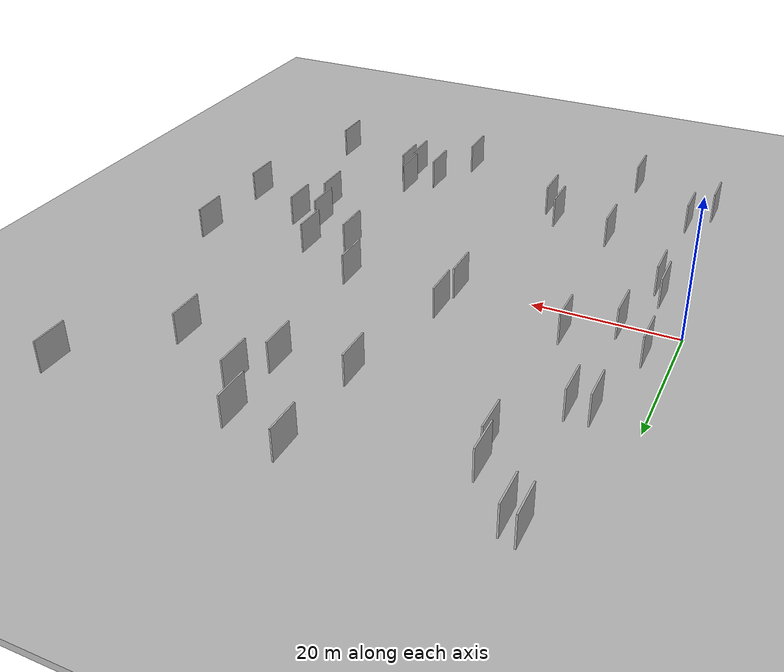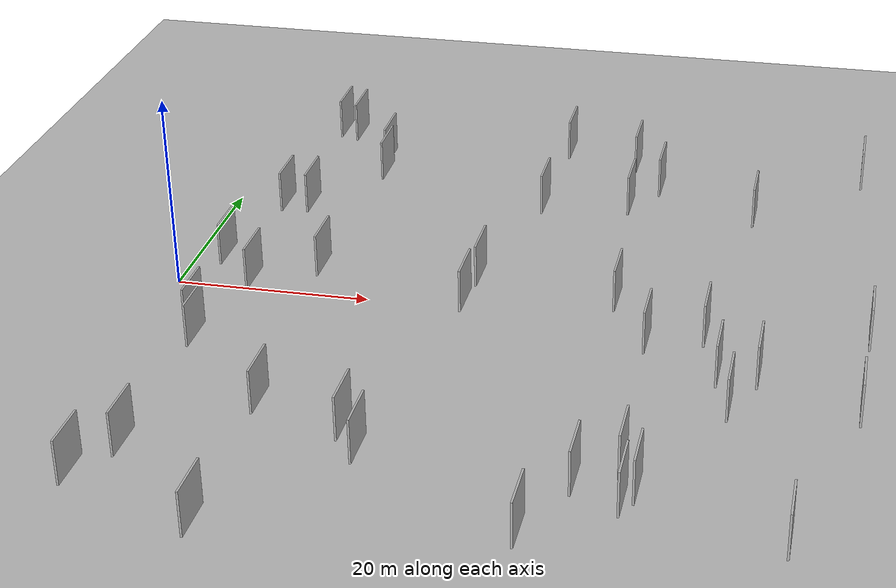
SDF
<?xml version="1.0" encoding="utf-8"?>

<sdf version="1.6">

   <world name="default">

      <gui fullscreen="0">

         <camera name="user_camera">

            <pose>-15 0 4.57585 0 0 0</pose>

            <view_controller>orbit</view_controller>

         </camera>

      </gui>

      <scene>

         <sky>

           <clouds>

             <speed>12</speed>

           </clouds>

         </sky>

         <ambient>0.4 0.4 0.4 1</ambient>

         <background>0.7 0.7 0.7 1</background>

         <shadows>1</shadows>

      </scene>

      <gravity>0 0 -9.8066</gravity>

      <magnetic_field>6e-06 2.3e-05 -4.2e-05</magnetic_field>

      <physics default="0" name="default_physics" type="ode">

         <ode>

            <solver>

               <type>quick</type>

               <iters>10</iters>

               <sor>1.0</sor>

               <use_dynamic_moi_rescaling>0</use_dynamic_moi_rescaling>

            </solver>

            <constraints>

               <cfm>0</cfm>

               <erp>0.2</erp>

               <contact_max_correcting_vel>100</contact_max_correcting_vel>

               <contact_surface_layer>0.001</contact_surface_layer>

            </constraints>

         </ode>

         <max_step_size>0.004</max_step_size>

         <real_time_factor>1</real_time_factor>

         <real_time_update_rate>250</real_time_update_rate>

      </physics>

      <light name="sun" type="directional">

         <cast_shadows>1</cast_shadows>

         <pose>0 0 10 0 0 0</pose>

         <diffuse>0.8 0.8 0.8 1</diffuse>

         <specular>0.2 0.2 0.2 1</specular>

         <attenuation>

            <range>1000</range>

            <constant>0.9</constant>

            <linear>0.01</linear>

            <quadratic>0.001</quadratic>

         </attenuation>

         <direction>-0.5 0.1 -0.9</direction>

      </light>

      <include>

         <name>ground_plane_1</name>

         <uri>model://HANNAS_ground_plane</uri>

         <pose>0 0 0  0 0 0</pose>

      </include>

      <include>

         <name>ground_plane_2</name>

         <uri>model://HANNAS_ground_plane</uri>

         <pose>100 0 0  0 0 0</pose>

      </include>

      <model name="HANNAS_wall_1">

         <static>1</static>

         <pose frame="">48.7667 -3.5897 0.0 0.000000 0.000000 1.570796</pose>

         <link name="link">

            <pose frame="">0 0 2.50 0 0 0</pose>

            <collision name="collision">

               <geometry>

                  <box>

                     <size>5.00 0.2 5.00</size>

                  </box>

               </geometry>

               <max_contacts>10</max_contacts>

               <surface>

                  <contact>

                     <ode/>

                  </contact>

                  <bounce/>

                  <friction>

                     <torsional>

                        <ode/>

                     </torsional>

                     <ode/>

                  </friction>

               </surface>

            </collision>

            <visual name="visual">

               <cast_shadows>0</cast_shadows>

               <geometry>

                  <box>

                     <size>5.00 0.2 5.00</size>

                  </box>

               </geometry>

               <material>

                  <script>

                     <uri>model://HANNAS_wall/materials/scripts</uri>

                     <uri>model://HANNAS_wall/materials/textures</uri>

                     <name>vrc/HANNAS_wall</name>

                  </script>

               </material>

            </visual>

            <self_collide>0</self_collide>

            <enable_wind>0</enable_wind>

            <kinematic>0</kinematic>

         </link>

      </model>

      <model name="HANNAS_wall_2">

         <static>1</static>

         <pose frame="">8.6576 39.2392 0.0 0.000000 0.000000 1.570796</pose>

         <link name="link">

            <pose frame="">0 0 2.50 0 0 0</pose>

            <collision name="collision">

               <geometry>

                  <box>

                     <size>5.00 0.2 5.00</size>

                  </box>

               </geometry>

               <max_contacts>10</max_contacts>

               <surface>

                  <contact>

                     <ode/>

                  </contact>

                  <bounce/>

                  <friction>

                     <torsional>

                        <ode/>

                     </torsional>

                     <ode/>

                  </friction>

               </surface>

            </collision>

            <visual name="visual">

               <cast_shadows>0</cast_shadows>

               <geometry>

                  <box>

                     <size>5.00 0.2 5.00</size>

                  </box>

               </geometry>

               <material>

                  <script>

                     <uri>model://HANNAS_wall/materials/scripts</uri>

                     <uri>model://HANNAS_wall/materials/textures</uri>

                     <name>vrc/HANNAS_wall</name>

                  </script>

               </material>

            </visual>

            <self_collide>0</self_collide>

            <enable_wind>0</enable_wind>

            <kinematic>0</kinematic>

         </link>

      </model>

      <model name="HANNAS_wall_3">

         <static>1</static>

         <pose frame="">5.6364 19.3057 0.0 0.000000 0.000000 1.570796</pose>

         <link name="link">

            <pose frame="">0 0 2.50 0 0 0</pose>

            <collision name="collision">

               <geometry>

                  <box>

                     <size>5.00 0.2 5.00</size>

                  </box>

               </geometry>

               <max_contacts>10</max_contacts>

               <surface>

                  <contact>

                     <ode/>

                  </contact>

                  <bounce/>

                  <friction>

                     <torsional>

                        <ode/>

                     </torsional>

                     <ode/>

                  </friction>

               </surface>

            </collision>

            <visual name="visual">

               <cast_shadows>0</cast_shadows>

               <geometry>

                  <box>

                     <size>5.00 0.2 5.00</size>

                  </box>

               </geometry>

               <material>

                  <script>

                     <uri>model://HANNAS_wall/materials/scripts</uri>

                     <uri>model://HANNAS_wall/materials/textures</uri>

                     <name>vrc/HANNAS_wall</name>

                  </script>

               </material>

            </visual>

            <self_collide>0</self_collide>

            <enable_wind>0</enable_wind>

            <kinematic>0</kinematic>

         </link>

      </model>

      <model name="HANNAS_wall_4">

         <static>1</static>

         <pose frame="">42.3247 36.5289 0.0 0.000000 0.000000 1.570796</pose>

         <link name="link">

            <pose frame="">0 0 2.50 0 0 0</pose>

            <collision name="collision">

               <geometry>

                  <box>

                     <size>5.00 0.2 5.00</size>

                  </box>

               </geometry>

               <max_contacts>10</max_contacts>

               <surface>

                  <contact>

                     <ode/>

                  </contact>

                  <bounce/>

                  <friction>

                     <torsional>

                        <ode/>

                     </torsional>

                     <ode/>

                  </friction>

               </surface>

            </collision>

            <visual name="visual">

               <cast_shadows>0</cast_shadows>

               <geometry>

                  <box>

                     <size>5.00 0.2 5.00</size>

                  </box>

               </geometry>

               <material>

                  <script>

                     <uri>model://HANNAS_wall/materials/scripts</uri>

                     <uri>model://HANNAS_wall/materials/textures</uri>

                     <name>vrc/HANNAS_wall</name>

                  </script>

               </material>

            </visual>

            <self_collide>0</self_collide>

            <enable_wind>0</enable_wind>

            <kinematic>0</kinematic>

         </link>

      </model>

      <model name="HANNAS_wall_5">

         <static>1</static>

         <pose frame="">29.7913 1.0914 0.0 0.000000 0.000000 1.570796</pose>

         <link name="link">

            <pose frame="">0 0 2.50 0 0 0</pose>

            <collision name="collision">

               <geometry>

                  <box>

                     <size>5.00 0.2 5.00</size>

                  </box>

               </geometry>

               <max_contacts>10</max_contacts>

               <surface>

                  <contact>

                     <ode/>

                  </contact>

                  <bounce/>

                  <friction>

                     <torsional>

                        <ode/>

                     </torsional>

                     <ode/>

                  </friction>

               </surface>

            </collision>

            <visual name="visual">

               <cast_shadows>0</cast_shadows>

               <geometry>

                  <box>

                     <size>5.00 0.2 5.00</size>

                  </box>

               </geometry>

               <material>

                  <script>

                     <uri>model://HANNAS_wall/materials/scripts</uri>

                     <uri>model://HANNAS_wall/materials/textures</uri>

                     <name>vrc/HANNAS_wall</name>

                  </script>

               </material>

            </visual>

            <self_collide>0</self_collide>

            <enable_wind>0</enable_wind>

            <kinematic>0</kinematic>

         </link>

      </model>

      <model name="HANNAS_wall_6">

         <static>1</static>

         <pose frame="">56.1538 -8.3670 0.0 0.000000 0.000000 1.570796</pose>

         <link name="link">

            <pose frame="">0 0 2.50 0 0 0</pose>

            <collision name="collision">

               <geometry>

                  <box>

                     <size>5.00 0.2 5.00</size>

                  </box>

               </geometry>

               <max_contacts>10</max_contacts>

               <surface>

                  <contact>

                     <ode/>

                  </contact>

                  <bounce/>

                  <friction>

                     <torsional>

                        <ode/>

                     </torsional>

                     <ode/>

                  </friction>

               </surface>

            </collision>

            <visual name="visual">

               <cast_shadows>0</cast_shadows>

               <geometry>

                  <box>

                     <size>5.00 0.2 5.00</size>

                  </box>

               </geometry>

               <material>

                  <script>

                     <uri>model://HANNAS_wall/materials/scripts</uri>

                     <uri>model://HANNAS_wall/materials/textures</uri>

                     <name>vrc/HANNAS_wall</name>

                  </script>

               </material>

            </visual>

            <self_collide>0</self_collide>

            <enable_wind>0</enable_wind>

            <kinematic>0</kinematic>

         </link>

      </model>

      <model name="HANNAS_wall_7">

         <static>1</static>

         <pose frame="">13.7642 5.5562 0.0 0.000000 0.000000 1.570796</pose>

         <link name="link">

            <pose frame="">0 0 2.50 0 0 0</pose>

            <collision name="collision">

               <geometry>

                  <box>

                     <size>5.00 0.2 5.00</size>

                  </box>

               </geometry>

               <max_contacts>10</max_contacts>

               <surface>

                  <contact>

                     <ode/>

                  </contact>

                  <bounce/>

                  <friction>

                     <torsional>

                        <ode/>

                     </torsional>

                     <ode/>

                  </friction>

               </surface>

            </collision>

            <visual name="visual">

               <cast_shadows>0</cast_shadows>

               <geometry>

                  <box>

                     <size>5.00 0.2 5.00</size>

                  </box>

               </geometry>

               <material>

                  <script>

                     <uri>model://HANNAS_wall/materials/scripts</uri>

                     <uri>model://HANNAS_wall/materials/textures</uri>

                     <name>vrc/HANNAS_wall</name>

                  </script>

               </material>

            </visual>

            <self_collide>0</self_collide>

            <enable_wind>0</enable_wind>

            <kinematic>0</kinematic>

         </link>

      </model>

      <model name="HANNAS_wall_8">

         <static>1</static>

         <pose frame="">43.0100 25.6684 0.0 0.000000 0.000000 1.570796</pose>

         <link name="link">

            <pose frame="">0 0 2.50 0 0 0</pose>

            <collision name="collision">

               <geometry>

                  <box>

                     <size>5.00 0.2 5.00</size>

                  </box>

               </geometry>

               <max_contacts>10</max_contacts>

               <surface>

                  <contact>

                     <ode/>

                  </contact>

                  <bounce/>

                  <friction>

                     <torsional>

                        <ode/>

                     </torsional>

                     <ode/>

                  </friction>

               </surface>

            </collision>

            <visual name="visual">

               <cast_shadows>0</cast_shadows>

               <geometry>

                  <box>

                     <size>5.00 0.2 5.00</size>

                  </box>

               </geometry>

               <material>

                  <script>

                     <uri>model://HANNAS_wall/materials/scripts</uri>

                     <uri>model://HANNAS_wall/materials/textures</uri>

                     <name>vrc/HANNAS_wall</name>

                  </script>

               </material>

            </visual>

            <self_collide>0</self_collide>

            <enable_wind>0</enable_wind>

            <kinematic>0</kinematic>

         </link>

      </model>

      <model name="HANNAS_wall_9">

         <static>1</static>

         <pose frame="">69.5566 -12.5910 0.0 0.000000 0.000000 1.570796</pose>

         <link name="link">

            <pose frame="">0 0 2.50 0 0 0</pose>

            <collision name="collision">

               <geometry>

                  <box>

                     <size>5.00 0.2 5.00</size>

                  </box>

               </geometry>

               <max_contacts>10</max_contacts>

               <surface>

                  <contact>

                     <ode/>

                  </contact>

                  <bounce/>

                  <friction>

                     <torsional>

                        <ode/>

                     </torsional>

                     <ode/>

                  </friction>

               </surface>

            </collision>

            <visual name="visual">

               <cast_shadows>0</cast_shadows>

               <geometry>

                  <box>

                     <size>5.00 0.2 5.00</size>

                  </box>

               </geometry>

               <material>

                  <script>

                     <uri>model://HANNAS_wall/materials/scripts</uri>

                     <uri>model://HANNAS_wall/materials/textures</uri>

                     <name>vrc/HANNAS_wall</name>

                  </script>

               </material>

            </visual>

            <self_collide>0</self_collide>

            <enable_wind>0</enable_wind>

            <kinematic>0</kinematic>

         </link>

      </model>

      <model name="HANNAS_wall_10">

         <static>1</static>

         <pose frame="">3.0416 -34.9562 0.0 0.000000 0.000000 1.570796</pose>

         <link name="link">

            <pose frame="">0 0 2.50 0 0 0</pose>

            <collision name="collision">

               <geometry>

                  <box>

                     <size>5.00 0.2 5.00</size>

                  </box>

               </geometry>

               <max_contacts>10</max_contacts>

               <surface>

                  <contact>

                     <ode/>

                  </contact>

                  <bounce/>

                  <friction>

                     <torsional>

                        <ode/>

                     </torsional>

                     <ode/>

                  </friction>

               </surface>

            </collision>

            <visual name="visual">

               <cast_shadows>0</cast_shadows>

               <geometry>

                  <box>

                     <size>5.00 0.2 5.00</size>

                  </box>

               </geometry>

               <material>

                  <script>

                     <uri>model://HANNAS_wall/materials/scripts</uri>

                     <uri>model://HANNAS_wall/materials/textures</uri>

                     <name>vrc/HANNAS_wall</name>

                  </script>

               </material>

            </visual>

            <self_collide>0</self_collide>

            <enable_wind>0</enable_wind>

            <kinematic>0</kinematic>

         </link>

      </model>

      <model name="HANNAS_wall_11">

         <static>1</static>

         <pose frame="">34.2192 38.9786 0.0 0.000000 0.000000 1.570796</pose>

         <link name="link">

            <pose frame="">0 0 2.50 0 0 0</pose>

            <collision name="collision">

               <geometry>

                  <box>

                     <size>5.00 0.2 5.00</size>

                  </box>

               </geometry>

               <max_contacts>10</max_contacts>

               <surface>

                  <contact>

                     <ode/>

                  </contact>

                  <bounce/>

                  <friction>

                     <torsional>

                        <ode/>

                     </torsional>

                     <ode/>

                  </friction>

               </surface>

            </collision>

            <visual name="visual">

               <cast_shadows>0</cast_shadows>

               <geometry>

                  <box>

                     <size>5.00 0.2 5.00</size>

                  </box>

               </geometry>

               <material>

                  <script>

                     <uri>model://HANNAS_wall/materials/scripts</uri>

                     <uri>model://HANNAS_wall/materials/textures</uri>

                     <name>vrc/HANNAS_wall</name>

                  </script>

               </material>

            </visual>

            <self_collide>0</self_collide>

            <enable_wind>0</enable_wind>

            <kinematic>0</kinematic>

         </link>

      </model>

      <model name="HANNAS_wall_12">

         <static>1</static>

         <pose frame="">5.6495 -10.6741 0.0 0.000000 0.000000 1.570796</pose>

         <link name="link">

            <pose frame="">0 0 2.50 0 0 0</pose>

            <collision name="collision">

               <geometry>

                  <box>

                     <size>5.00 0.2 5.00</size>

                  </box>

               </geometry>

               <max_contacts>10</max_contacts>

               <surface>

                  <contact>

                     <ode/>

                  </contact>

                  <bounce/>

                  <friction>

                     <torsional>

                        <ode/>

                     </torsional>

                     <ode/>

                  </friction>

               </surface>

            </collision>

            <visual name="visual">

               <cast_shadows>0</cast_shadows>

               <geometry>

                  <box>

                     <size>5.00 0.2 5.00</size>

                  </box>

               </geometry>

               <material>

                  <script>

                     <uri>model://HANNAS_wall/materials/scripts</uri>

                     <uri>model://HANNAS_wall/materials/textures</uri>

                     <name>vrc/HANNAS_wall</name>

                  </script>

               </material>

            </visual>

            <self_collide>0</self_collide>

            <enable_wind>0</enable_wind>

            <kinematic>0</kinematic>

         </link>

      </model>

      <model name="HANNAS_wall_13">

         <static>1</static>

         <pose frame="">14.3920 29.3328 0.0 0.000000 0.000000 1.570796</pose>

         <link name="link">

            <pose frame="">0 0 2.50 0 0 0</pose>

            <collision name="collision">

               <geometry>

                  <box>

                     <size>5.00 0.2 5.00</size>

                  </box>

               </geometry>

               <max_contacts>10</max_contacts>

               <surface>

                  <contact>

                     <ode/>

                  </contact>

                  <bounce/>

                  <friction>

                     <torsional>

                        <ode/>

                     </torsional>

                     <ode/>

                  </friction>

               </surface>

            </collision>

            <visual name="visual">

               <cast_shadows>0</cast_shadows>

               <geometry>

                  <box>

                     <size>5.00 0.2 5.00</size>

                  </box>

               </geometry>

               <material>

                  <script>

                     <uri>model://HANNAS_wall/materials/scripts</uri>

                     <uri>model://HANNAS_wall/materials/textures</uri>

                     <name>vrc/HANNAS_wall</name>

                  </script>

               </material>

            </visual>

            <self_collide>0</self_collide>

            <enable_wind>0</enable_wind>

            <kinematic>0</kinematic>

         </link>

      </model>

      <model name="HANNAS_wall_14">

         <static>1</static>

         <pose frame="">45.7584 30.9657 0.0 0.000000 0.000000 1.570796</pose>

         <link name="link">

            <pose frame="">0 0 2.50 0 0 0</pose>

            <collision name="collision">

               <geometry>

                  <box>

                     <size>5.00 0.2 5.00</size>

                  </box>

               </geometry>

               <max_contacts>10</max_contacts>

               <surface>

                  <contact>

                     <ode/>

                  </contact>

                  <bounce/>

                  <friction>

                     <torsional>

                        <ode/>

                     </torsional>

                     <ode/>

                  </friction>

               </surface>

            </collision>

            <visual name="visual">

               <cast_shadows>0</cast_shadows>

               <geometry>

                  <box>

                     <size>5.00 0.2 5.00</size>

                  </box>

               </geometry>

               <material>

                  <script>

                     <uri>model://HANNAS_wall/materials/scripts</uri>

                     <uri>model://HANNAS_wall/materials/textures</uri>

                     <name>vrc/HANNAS_wall</name>

                  </script>

               </material>

            </visual>

            <self_collide>0</self_collide>

            <enable_wind>0</enable_wind>

            <kinematic>0</kinematic>

         </link>

      </model>

      <model name="HANNAS_wall_15">

         <static>1</static>

         <pose frame="">54.2456 -1.1777 0.0 0.000000 0.000000 1.570796</pose>

         <link name="link">

            <pose frame="">0 0 2.50 0 0 0</pose>

            <collision name="collision">

               <geometry>

                  <box>

                     <size>5.00 0.2 5.00</size>

                  </box>

               </geometry>

               <max_contacts>10</max_contacts>

               <surface>

                  <contact>

                     <ode/>

                  </contact>

                  <bounce/>

                  <friction>

                     <torsional>

                        <ode/>

                     </torsional>

                     <ode/>

                  </friction>

               </surface>

            </collision>

            <visual name="visual">

               <cast_shadows>0</cast_shadows>

               <geometry>

                  <box>

                     <size>5.00 0.2 5.00</size>

                  </box>

               </geometry>

               <material>

                  <script>

                     <uri>model://HANNAS_wall/materials/scripts</uri>

                     <uri>model://HANNAS_wall/materials/textures</uri>

                     <name>vrc/HANNAS_wall</name>

                  </script>

               </material>

            </visual>

            <self_collide>0</self_collide>

            <enable_wind>0</enable_wind>

            <kinematic>0</kinematic>

         </link>

      </model>

      <model name="HANNAS_wall_16">

         <static>1</static>

         <pose frame="">7.5877 1.4294 0.0 0.000000 0.000000 1.570796</pose>

         <link name="link">

            <pose frame="">0 0 2.50 0 0 0</pose>

            <collision name="collision">

               <geometry>

                  <box>

                     <size>5.00 0.2 5.00</size>

                  </box>

               </geometry>

               <max_contacts>10</max_contacts>

               <surface>

                  <contact>

                     <ode/>

                  </contact>

                  <bounce/>

                  <friction>

                     <torsional>

                        <ode/>

                     </torsional>

                     <ode/>

                  </friction>

               </surface>

            </collision>

            <visual name="visual">

               <cast_shadows>0</cast_shadows>

               <geometry>

                  <box>

                     <size>5.00 0.2 5.00</size>

                  </box>

               </geometry>

               <material>

                  <script>

                     <uri>model://HANNAS_wall/materials/scripts</uri>

                     <uri>model://HANNAS_wall/materials/textures</uri>

                     <name>vrc/HANNAS_wall</name>

                  </script>

               </material>

            </visual>

            <self_collide>0</self_collide>

            <enable_wind>0</enable_wind>

            <kinematic>0</kinematic>

         </link>

      </model>

      <model name="HANNAS_wall_17">

         <static>1</static>

         <pose frame="">30.2131 6.5364 0.0 0.000000 0.000000 1.570796</pose>

         <link name="link">

            <pose frame="">0 0 2.50 0 0 0</pose>

            <collision name="collision">

               <geometry>

                  <box>

                     <size>5.00 0.2 5.00</size>

                  </box>

               </geometry>

               <max_contacts>10</max_contacts>

               <surface>

                  <contact>

                     <ode/>

                  </contact>

                  <bounce/>

                  <friction>

                     <torsional>

                        <ode/>

                     </torsional>

                     <ode/>

                  </friction>

               </surface>

            </collision>

            <visual name="visual">

               <cast_shadows>0</cast_shadows>

               <geometry>

                  <box>

                     <size>5.00 0.2 5.00</size>

                  </box>

               </geometry>

               <material>

                  <script>

                     <uri>model://HANNAS_wall/materials/scripts</uri>

                     <uri>model://HANNAS_wall/materials/textures</uri>

                     <name>vrc/HANNAS_wall</name>

                  </script>

               </material>

            </visual>

            <self_collide>0</self_collide>

            <enable_wind>0</enable_wind>

            <kinematic>0</kinematic>

         </link>

      </model>

      <model name="HANNAS_wall_18">

         <static>1</static>

         <pose frame="">67.7466 37.0043 0.0 0.000000 0.000000 1.570796</pose>

         <link name="link">

            <pose frame="">0 0 2.50 0 0 0</pose>

            <collision name="collision">

               <geometry>

                  <box>

                     <size>5.00 0.2 5.00</size>

                  </box>

               </geometry>

               <max_contacts>10</max_contacts>

               <surface>

                  <contact>

                     <ode/>

                  </contact>

                  <bounce/>

                  <friction>

                     <torsional>

                        <ode/>

                     </torsional>

                     <ode/>

                  </friction>

               </surface>

            </collision>

            <visual name="visual">

               <cast_shadows>0</cast_shadows>

               <geometry>

                  <box>

                     <size>5.00 0.2 5.00</size>

                  </box>

               </geometry>

               <material>

                  <script>

                     <uri>model://HANNAS_wall/materials/scripts</uri>

                     <uri>model://HANNAS_wall/materials/textures</uri>

                     <name>vrc/HANNAS_wall</name>

                  </script>

               </material>

            </visual>

            <self_collide>0</self_collide>

            <enable_wind>0</enable_wind>

            <kinematic>0</kinematic>

         </link>

      </model>

      <model name="HANNAS_wall_19">

         <static>1</static>

         <pose frame="">69.8926 1.0822 0.0 0.000000 0.000000 1.570796</pose>

         <link name="link">

            <pose frame="">0 0 2.50 0 0 0</pose>

            <collision name="collision">

               <geometry>

                  <box>

                     <size>5.00 0.2 5.00</size>

                  </box>

               </geometry>

               <max_contacts>10</max_contacts>

               <surface>

                  <contact>

                     <ode/>

                  </contact>

                  <bounce/>

                  <friction>

                     <torsional>

                        <ode/>

                     </torsional>

                     <ode/>

                  </friction>

               </surface>

            </collision>

            <visual name="visual">

               <cast_shadows>0</cast_shadows>

               <geometry>

                  <box>

                     <size>5.00 0.2 5.00</size>

                  </box>

               </geometry>

               <material>

                  <script>

                     <uri>model://HANNAS_wall/materials/scripts</uri>

                     <uri>model://HANNAS_wall/materials/textures</uri>

                     <name>vrc/HANNAS_wall</name>

                  </script>

               </material>

            </visual>

            <self_collide>0</self_collide>

            <enable_wind>0</enable_wind>

            <kinematic>0</kinematic>

         </link>

      </model>

      <model name="HANNAS_wall_20">

         <static>1</static>

         <pose frame="">51.3743 -28.3332 0.0 0.000000 0.000000 1.570796</pose>

         <link name="link">

            <pose frame="">0 0 2.50 0 0 0</pose>

            <collision name="collision">

               <geometry>

                  <box>

                     <size>5.00 0.2 5.00</size>

                  </box>

               </geometry>

               <max_contacts>10</max_contacts>

               <surface>

                  <contact>

                     <ode/>

                  </contact>

                  <bounce/>

                  <friction>

                     <torsional>

                        <ode/>

                     </torsional>

                     <ode/>

                  </friction>

               </surface>

            </collision>

            <visual name="visual">

               <cast_shadows>0</cast_shadows>

               <geometry>

                  <box>

                     <size>5.00 0.2 5.00</size>

                  </box>

               </geometry>

               <material>

                  <script>

                     <uri>model://HANNAS_wall/materials/scripts</uri>

                     <uri>model://HANNAS_wall/materials/textures</uri>

                     <name>vrc/HANNAS_wall</name>

                  </script>

               </material>

            </visual>

            <self_collide>0</self_collide>

            <enable_wind>0</enable_wind>

            <kinematic>0</kinematic>

         </link>

      </model>

      <model name="HANNAS_wall_21">

         <static>1</static>

         <pose frame="">15.5185 -20.9836 0.0 0.000000 0.000000 1.570796</pose>

         <link name="link">

            <pose frame="">0 0 2.50 0 0 0</pose>

            <collision name="collision">

               <geometry>

                  <box>

                     <size>5.00 0.2 5.00</size>

                  </box>

               </geometry>

               <max_contacts>10</max_contacts>

               <surface>

                  <contact>

                     <ode/>

                  </contact>

                  <bounce/>

                  <friction>

                     <torsional>

                        <ode/>

                     </torsional>

                     <ode/>

                  </friction>

               </surface>

            </collision>

            <visual name="visual">

               <cast_shadows>0</cast_shadows>

               <geometry>

                  <box>

                     <size>5.00 0.2 5.00</size>

                  </box>

               </geometry>

               <material>

                  <script>

                     <uri>model://HANNAS_wall/materials/scripts</uri>

                     <uri>model://HANNAS_wall/materials/textures</uri>

                     <name>vrc/HANNAS_wall</name>

                  </script>

               </material>

            </visual>

            <self_collide>0</self_collide>

            <enable_wind>0</enable_wind>

            <kinematic>0</kinematic>

         </link>

      </model>

      <model name="HANNAS_wall_22">

         <static>1</static>

         <pose frame="">64.6149 -33.4672 0.0 0.000000 0.000000 1.570796</pose>

         <link name="link">

            <pose frame="">0 0 2.50 0 0 0</pose>

            <collision name="collision">

               <geometry>

                  <box>

                     <size>5.00 0.2 5.00</size>

                  </box>

               </geometry>

               <max_contacts>10</max_contacts>

               <surface>

                  <contact>

                     <ode/>

                  </contact>

                  <bounce/>

                  <friction>

                     <torsional>

                        <ode/>

                     </torsional>

                     <ode/>

                  </friction>

               </surface>

            </collision>

            <visual name="visual">

               <cast_shadows>0</cast_shadows>

               <geometry>

                  <box>

                     <size>5.00 0.2 5.00</size>

                  </box>

               </geometry>

               <material>

                  <script>

                     <uri>model://HANNAS_wall/materials/scripts</uri>

                     <uri>model://HANNAS_wall/materials/textures</uri>

                     <name>vrc/HANNAS_wall</name>

                  </script>

               </material>

            </visual>

            <self_collide>0</self_collide>

            <enable_wind>0</enable_wind>

            <kinematic>0</kinematic>

         </link>

      </model>

      <model name="HANNAS_wall_23">

         <static>1</static>

         <pose frame="">49.6263 -24.9053 0.0 0.000000 0.000000 1.570796</pose>

         <link name="link">

            <pose frame="">0 0 2.50 0 0 0</pose>

            <collision name="collision">

               <geometry>

                  <box>

                     <size>5.00 0.2 5.00</size>

                  </box>

               </geometry>

               <max_contacts>10</max_contacts>

               <surface>

                  <contact>

                     <ode/>

                  </contact>

                  <bounce/>

                  <friction>

                     <torsional>

                        <ode/>

                     </torsional>

                     <ode/>

                  </friction>

               </surface>

            </collision>

            <visual name="visual">

               <cast_shadows>0</cast_shadows>

               <geometry>

                  <box>

                     <size>5.00 0.2 5.00</size>

                  </box>

               </geometry>

               <material>

                  <script>

                     <uri>model://HANNAS_wall/materials/scripts</uri>

                     <uri>model://HANNAS_wall/materials/textures</uri>

                     <name>vrc/HANNAS_wall</name>

                  </script>

               </material>

            </visual>

            <self_collide>0</self_collide>

            <enable_wind>0</enable_wind>

            <kinematic>0</kinematic>

         </link>

      </model>

      <model name="HANNAS_wall_24">

         <static>1</static>

         <pose frame="">57.7437 -14.0495 0.0 0.000000 0.000000 1.570796</pose>

         <link name="link">

            <pose frame="">0 0 2.50 0 0 0</pose>

            <collision name="collision">

               <geometry>

                  <box>

                     <size>5.00 0.2 5.00</size>

                  </box>

               </geometry>

               <max_contacts>10</max_contacts>

               <surface>

                  <contact>

                     <ode/>

                  </contact>

                  <bounce/>

                  <friction>

                     <torsional>

                        <ode/>

                     </torsional>

                     <ode/>

                  </friction>

               </surface>

            </collision>

            <visual name="visual">

               <cast_shadows>0</cast_shadows>

               <geometry>

                  <box>

                     <size>5.00 0.2 5.00</size>

                  </box>

               </geometry>

               <material>

                  <script>

                     <uri>model://HANNAS_wall/materials/scripts</uri>

                     <uri>model://HANNAS_wall/materials/textures</uri>

                     <name>vrc/HANNAS_wall</name>

                  </script>

               </material>

            </visual>

            <self_collide>0</self_collide>

            <enable_wind>0</enable_wind>

            <kinematic>0</kinematic>

         </link>

      </model>

      <model name="HANNAS_wall_25">

         <static>1</static>

         <pose frame="">56.6269 25.2751 0.0 0.000000 0.000000 1.570796</pose>

         <link name="link">

            <pose frame="">0 0 2.50 0 0 0</pose>

            <collision name="collision">

               <geometry>

                  <box>

                     <size>5.00 0.2 5.00</size>

                  </box>

               </geometry>

               <max_contacts>10</max_contacts>

               <surface>

                  <contact>

                     <ode/>

                  </contact>

                  <bounce/>

                  <friction>

                     <torsional>

                        <ode/>

                     </torsional>

                     <ode/>

                  </friction>

               </surface>

            </collision>

            <visual name="visual">

               <cast_shadows>0</cast_shadows>

               <geometry>

                  <box>

                     <size>5.00 0.2 5.00</size>

                  </box>

               </geometry>

               <material>

                  <script>

                     <uri>model://HANNAS_wall/materials/scripts</uri>

                     <uri>model://HANNAS_wall/materials/textures</uri>

                     <name>vrc/HANNAS_wall</name>

                  </script>

               </material>

            </visual>

            <self_collide>0</self_collide>

            <enable_wind>0</enable_wind>

            <kinematic>0</kinematic>

         </link>

      </model>

      <model name="HANNAS_wall_26">

         <static>1</static>

         <pose frame="">24.2420 -23.7374 0.0 0.000000 0.000000 1.570796</pose>

         <link name="link">

            <pose frame="">0 0 2.50 0 0 0</pose>

            <collision name="collision">

               <geometry>

                  <box>

                     <size>5.00 0.2 5.00</size>

                  </box>

               </geometry>

               <max_contacts>10</max_contacts>

               <surface>

                  <contact>

                     <ode/>

                  </contact>

                  <bounce/>

                  <friction>

                     <torsional>

                        <ode/>

                     </torsional>

                     <ode/>

                  </friction>

               </surface>

            </collision>

            <visual name="visual">

               <cast_shadows>0</cast_shadows>

               <geometry>

                  <box>

                     <size>5.00 0.2 5.00</size>

                  </box>

               </geometry>

               <material>

                  <script>

                     <uri>model://HANNAS_wall/materials/scripts</uri>

                     <uri>model://HANNAS_wall/materials/textures</uri>

                     <name>vrc/HANNAS_wall</name>

                  </script>

               </material>

            </visual>

            <self_collide>0</self_collide>

            <enable_wind>0</enable_wind>

            <kinematic>0</kinematic>

         </link>

      </model>

      <model name="HANNAS_wall_27">

         <static>1</static>

         <pose frame="">13.8191 32.9090 0.0 0.000000 0.000000 1.570796</pose>

         <link name="link">

            <pose frame="">0 0 2.50 0 0 0</pose>

            <collision name="collision">

               <geometry>

                  <box>

                     <size>5.00 0.2 5.00</size>

                  </box>

               </geometry>

               <max_contacts>10</max_contacts>

               <surface>

                  <contact>

                     <ode/>

                  </contact>

                  <bounce/>

                  <friction>

                     <torsional>

                        <ode/>

                     </torsional>

                     <ode/>

                  </friction>

               </surface>

            </collision>

            <visual name="visual">

               <cast_shadows>0</cast_shadows>

               <geometry>

                  <box>

                     <size>5.00 0.2 5.00</size>

                  </box>

               </geometry>

               <material>

                  <script>

                     <uri>model://HANNAS_wall/materials/scripts</uri>

                     <uri>model://HANNAS_wall/materials/textures</uri>

                     <name>vrc/HANNAS_wall</name>

                  </script>

               </material>

            </visual>

            <self_collide>0</self_collide>

            <enable_wind>0</enable_wind>

            <kinematic>0</kinematic>

         </link>

      </model>

      <model name="HANNAS_wall_28">

         <static>1</static>

         <pose frame="">50.3876 -30.3457 0.0 0.000000 0.000000 1.570796</pose>

         <link name="link">

            <pose frame="">0 0 2.50 0 0 0</pose>

            <collision name="collision">

               <geometry>

                  <box>

                     <size>5.00 0.2 5.00</size>

                  </box>

               </geometry>

               <max_contacts>10</max_contacts>

               <surface>

                  <contact>

                     <ode/>

                  </contact>

                  <bounce/>

                  <friction>

                     <torsional>

                        <ode/>

                     </torsional>

                     <ode/>

                  </friction>

               </surface>

            </collision>

            <visual name="visual">

               <cast_shadows>0</cast_shadows>

               <geometry>

                  <box>

                     <size>5.00 0.2 5.00</size>

                  </box>

               </geometry>

               <material>

                  <script>

                     <uri>model://HANNAS_wall/materials/scripts</uri>

                     <uri>model://HANNAS_wall/materials/textures</uri>

                     <name>vrc/HANNAS_wall</name>

                  </script>

               </material>

            </visual>

            <self_collide>0</self_collide>

            <enable_wind>0</enable_wind>

            <kinematic>0</kinematic>

         </link>

      </model>

      <model name="HANNAS_wall_29">

         <static>1</static>

         <pose frame="">45.9056 -28.0840 0.0 0.000000 0.000000 1.570796</pose>

         <link name="link">

            <pose frame="">0 0 2.50 0 0 0</pose>

            <collision name="collision">

               <geometry>

                  <box>

                     <size>5.00 0.2 5.00</size>

                  </box>

               </geometry>

               <max_contacts>10</max_contacts>

               <surface>

                  <contact>

                     <ode/>

                  </contact>

                  <bounce/>

                  <friction>

                     <torsional>

                        <ode/>

                     </torsional>

                     <ode/>

                  </friction>

               </surface>

            </collision>

            <visual name="visual">

               <cast_shadows>0</cast_shadows>

               <geometry>

                  <box>

                     <size>5.00 0.2 5.00</size>

                  </box>

               </geometry>

               <material>

                  <script>

                     <uri>model://HANNAS_wall/materials/scripts</uri>

                     <uri>model://HANNAS_wall/materials/textures</uri>

                     <name>vrc/HANNAS_wall</name>

                  </script>

               </material>

            </visual>

            <self_collide>0</self_collide>

            <enable_wind>0</enable_wind>

            <kinematic>0</kinematic>

         </link>

      </model>

      <model name="HANNAS_wall_30">

         <static>1</static>

         <pose frame="">8.4606 19.5830 0.0 0.000000 0.000000 1.570796</pose>

         <link name="link">

            <pose frame="">0 0 2.50 0 0 0</pose>

            <collision name="collision">

               <geometry>

                  <box>

                     <size>5.00 0.2 5.00</size>

                  </box>

               </geometry>

               <max_contacts>10</max_contacts>

               <surface>

                  <contact>

                     <ode/>

                  </contact>

                  <bounce/>

                  <friction>

                     <torsional>

                        <ode/>

                     </torsional>

                     <ode/>

                  </friction>

               </surface>

            </collision>

            <visual name="visual">

               <cast_shadows>0</cast_shadows>

               <geometry>

                  <box>

                     <size>5.00 0.2 5.00</size>

                  </box>

               </geometry>

               <material>

                  <script>

                     <uri>model://HANNAS_wall/materials/scripts</uri>

                     <uri>model://HANNAS_wall/materials/textures</uri>

                     <name>vrc/HANNAS_wall</name>

                  </script>

               </material>

            </visual>

            <self_collide>0</self_collide>

            <enable_wind>0</enable_wind>

            <kinematic>0</kinematic>

         </link>

      </model>

      <model name="HANNAS_wall_31">

         <static>1</static>

         <pose frame="">15.9250 -39.9434 0.0 0.000000 0.000000 1.570796</pose>

         <link name="link">

            <pose frame="">0 0 2.50 0 0 0</pose>

            <collision name="collision">

               <geometry>

                  <box>

                     <size>5.00 0.2 5.00</size>

                  </box>

               </geometry>

               <max_contacts>10</max_contacts>

               <surface>

                  <contact>

                     <ode/>

                  </contact>

                  <bounce/>

                  <friction>

                     <torsional>

                        <ode/>

                     </torsional>

                     <ode/>

                  </friction>

               </surface>

            </collision>

            <visual name="visual">

               <cast_shadows>0</cast_shadows>

               <geometry>

                  <box>

                     <size>5.00 0.2 5.00</size>

                  </box>

               </geometry>

               <material>

                  <script>

                     <uri>model://HANNAS_wall/materials/scripts</uri>

                     <uri>model://HANNAS_wall/materials/textures</uri>

                     <name>vrc/HANNAS_wall</name>

                  </script>

               </material>

            </visual>

            <self_collide>0</self_collide>

            <enable_wind>0</enable_wind>

            <kinematic>0</kinematic>

         </link>

      </model>

      <model name="HANNAS_wall_32">

         <static>1</static>

         <pose frame="">4.4493 -7.8242 0.0 0.000000 0.000000 1.570796</pose>

         <link name="link">

            <pose frame="">0 0 2.50 0 0 0</pose>

            <collision name="collision">

               <geometry>

                  <box>

                     <size>5.00 0.2 5.00</size>

                  </box>

               </geometry>

               <max_contacts>10</max_contacts>

               <surface>

                  <contact>

                     <ode/>

                  </contact>

                  <bounce/>

                  <friction>

                     <torsional>

                        <ode/>

                     </torsional>

                     <ode/>

                  </friction>

               </surface>

            </collision>

            <visual name="visual">

               <cast_shadows>0</cast_shadows>

               <geometry>

                  <box>

                     <size>5.00 0.2 5.00</size>

                  </box>

               </geometry>

               <material>

                  <script>

                     <uri>model://HANNAS_wall/materials/scripts</uri>

                     <uri>model://HANNAS_wall/materials/textures</uri>

                     <name>vrc/HANNAS_wall</name>

                  </script>

               </material>

            </visual>

            <self_collide>0</self_collide>

            <enable_wind>0</enable_wind>

            <kinematic>0</kinematic>

         </link>

      </model>

      <model name="HANNAS_wall_33">

         <static>1</static>

         <pose frame="">42.6043 -36.2293 0.0 0.000000 0.000000 1.570796</pose>

         <link name="link">

            <pose frame="">0 0 2.50 0 0 0</pose>

            <collision name="collision">

               <geometry>

                  <box>

                     <size>5.00 0.2 5.00</size>

                  </box>

               </geometry>

               <max_contacts>10</max_contacts>

               <surface>

                  <contact>

                     <ode/>

                  </contact>

                  <bounce/>

                  <friction>

                     <torsional>

                        <ode/>

                     </torsional>

                     <ode/>

                  </friction>

               </surface>

            </collision>

            <visual name="visual">

               <cast_shadows>0</cast_shadows>

               <geometry>

                  <box>

                     <size>5.00 0.2 5.00</size>

                  </box>

               </geometry>

               <material>

                  <script>

                     <uri>model://HANNAS_wall/materials/scripts</uri>

                     <uri>model://HANNAS_wall/materials/textures</uri>

                     <name>vrc/HANNAS_wall</name>

                  </script>

               </material>

            </visual>

            <self_collide>0</self_collide>

            <enable_wind>0</enable_wind>

            <kinematic>0</kinematic>

         </link>

      </model>

      <model name="HANNAS_wall_34">

         <static>1</static>

         <pose frame="">3.2122 6.1103 0.0 0.000000 0.000000 1.570796</pose>

         <link name="link">

            <pose frame="">0 0 2.50 0 0 0</pose>

            <collision name="collision">

               <geometry>

                  <box>

                     <size>5.00 0.2 5.00</size>

                  </box>

               </geometry>

               <max_contacts>10</max_contacts>

               <surface>

                  <contact>

                     <ode/>

                  </contact>

                  <bounce/>

                  <friction>

                     <torsional>

                        <ode/>

                     </torsional>

                     <ode/>

                  </friction>

               </surface>

            </collision>

            <visual name="visual">

               <cast_shadows>0</cast_shadows>

               <geometry>

                  <box>

                     <size>5.00 0.2 5.00</size>

                  </box>

               </geometry>

               <material>

                  <script>

                     <uri>model://HANNAS_wall/materials/scripts</uri>

                     <uri>model://HANNAS_wall/materials/textures</uri>

                     <name>vrc/HANNAS_wall</name>

                  </script>

               </material>

            </visual>

            <self_collide>0</self_collide>

            <enable_wind>0</enable_wind>

            <kinematic>0</kinematic>

         </link>

      </model>

      <model name="HANNAS_wall_35">

         <static>1</static>

         <pose frame="">26.4866 -27.0158 0.0 0.000000 0.000000 1.570796</pose>

         <link name="link">

            <pose frame="">0 0 2.50 0 0 0</pose>

            <collision name="collision">

               <geometry>

                  <box>

                     <size>5.00 0.2 5.00</size>

                  </box>

               </geometry>

               <max_contacts>10</max_contacts>

               <surface>

                  <contact>

                     <ode/>

                  </contact>

                  <bounce/>

                  <friction>

                     <torsional>

                        <ode/>

                     </torsional>

                     <ode/>

                  </friction>

               </surface>

            </collision>

            <visual name="visual">

               <cast_shadows>0</cast_shadows>

               <geometry>

                  <box>

                     <size>5.00 0.2 5.00</size>

                  </box>

               </geometry>

               <material>

                  <script>

                     <uri>model://HANNAS_wall/materials/scripts</uri>

                     <uri>model://HANNAS_wall/materials/textures</uri>

                     <name>vrc/HANNAS_wall</name>

                  </script>

               </material>

            </visual>

            <self_collide>0</self_collide>

            <enable_wind>0</enable_wind>

            <kinematic>0</kinematic>

         </link>

      </model>

      <model name="HANNAS_wall_36">

         <static>1</static>

         <pose frame="">44.7572 4.0832 0.0 0.000000 0.000000 1.570796</pose>

         <link name="link">

            <pose frame="">0 0 2.50 0 0 0</pose>

            <collision name="collision">

               <geometry>

                  <box>

                     <size>5.00 0.2 5.00</size>

                  </box>

               </geometry>

               <max_contacts>10</max_contacts>

               <surface>

                  <contact>

                     <ode/>

                  </contact>

                  <bounce/>

                  <friction>

                     <torsional>

                        <ode/>

                     </torsional>

                     <ode/>

                  </friction>

               </surface>

            </collision>

            <visual name="visual">

               <cast_shadows>0</cast_shadows>

               <geometry>

                  <box>

                     <size>5.00 0.2 5.00</size>

                  </box>

               </geometry>

               <material>

                  <script>

                     <uri>model://HANNAS_wall/materials/scripts</uri>

                     <uri>model://HANNAS_wall/materials/textures</uri>

                     <name>vrc/HANNAS_wall</name>

                  </script>

               </material>

            </visual>

            <self_collide>0</self_collide>

            <enable_wind>0</enable_wind>

            <kinematic>0</kinematic>

         </link>

      </model>

      <model name="HANNAS_wall_37">

         <static>1</static>

         <pose frame="">59.9113 -7.8884 0.0 0.000000 0.000000 1.570796</pose>

         <link name="link">

            <pose frame="">0 0 2.50 0 0 0</pose>

            <collision name="collision">

               <geometry>

                  <box>

                     <size>5.00 0.2 5.00</size>

                  </box>

               </geometry>

               <max_contacts>10</max_contacts>

               <surface>

                  <contact>

                     <ode/>

                  </contact>

                  <bounce/>

                  <friction>

                     <torsional>

                        <ode/>

                     </torsional>

                     <ode/>

                  </friction>

               </surface>

            </collision>

            <visual name="visual">

               <cast_shadows>0</cast_shadows>

               <geometry>

                  <box>

                     <size>5.00 0.2 5.00</size>

                  </box>

               </geometry>

               <material>

                  <script>

                     <uri>model://HANNAS_wall/materials/scripts</uri>

                     <uri>model://HANNAS_wall/materials/textures</uri>

                     <name>vrc/HANNAS_wall</name>

                  </script>

               </material>

            </visual>

            <self_collide>0</self_collide>

            <enable_wind>0</enable_wind>

            <kinematic>0</kinematic>

         </link>

      </model>

      <model name="HANNAS_wall_38">

         <static>1</static>

         <pose frame="">6.6195 39.8515 0.0 0.000000 0.000000 1.570796</pose>

         <link name="link">

            <pose frame="">0 0 2.50 0 0 0</pose>

            <collision name="collision">

               <geometry>

                  <box>

                     <size>5.00 0.2 5.00</size>

                  </box>

               </geometry>

               <max_contacts>10</max_contacts>

               <surface>

                  <contact>

                     <ode/>

                  </contact>

                  <bounce/>

                  <friction>

                     <torsional>

                        <ode/>

                     </torsional>

                     <ode/>

                  </friction>

               </surface>

            </collision>

            <visual name="visual">

               <cast_shadows>0</cast_shadows>

               <geometry>

                  <box>

                     <size>5.00 0.2 5.00</size>

                  </box>

               </geometry>

               <material>

                  <script>

                     <uri>model://HANNAS_wall/materials/scripts</uri>

                     <uri>model://HANNAS_wall/materials/textures</uri>

                     <name>vrc/HANNAS_wall</name>

                  </script>

               </material>

            </visual>

            <self_collide>0</self_collide>

            <enable_wind>0</enable_wind>

            <kinematic>0</kinematic>

         </link>

      </model>

      <model name="HANNAS_wall_39">

         <static>1</static>

         <pose frame="">5.8983 -29.9220 0.0 0.000000 0.000000 1.570796</pose>

         <link name="link">

            <pose frame="">0 0 2.50 0 0 0</pose>

            <collision name="collision">

               <geometry>

                  <box>

                     <size>5.00 0.2 5.00</size>

                  </box>

               </geometry>

               <max_contacts>10</max_contacts>

               <surface>

                  <contact>

                     <ode/>

                  </contact>

                  <bounce/>

                  <friction>

                     <torsional>

                        <ode/>

                     </torsional>

                     <ode/>

                  </friction>

               </surface>

            </collision>

            <visual name="visual">

               <cast_shadows>0</cast_shadows>

               <geometry>

                  <box>

                     <size>5.00 0.2 5.00</size>

                  </box>

               </geometry>

               <material>

                  <script>

                     <uri>model://HANNAS_wall/materials/scripts</uri>

                     <uri>model://HANNAS_wall/materials/textures</uri>

                     <name>vrc/HANNAS_wall</name>

                  </script>

               </material>

            </visual>

            <self_collide>0</self_collide>

            <enable_wind>0</enable_wind>

            <kinematic>0</kinematic>

         </link>

      </model>

      <model name="HANNAS_wall_40">

         <static>1</static>

         <pose frame="">33.6944 24.1859 0.0 0.000000 0.000000 1.570796</pose>

         <link name="link">

            <pose frame="">0 0 2.50 0 0 0</pose>

            <collision name="collision">

               <geometry>

                  <box>

                     <size>5.00 0.2 5.00</size>

                  </box>

               </geometry>

               <max_contacts>10</max_contacts>

               <surface>

                  <contact>

                     <ode/>

                  </contact>

                  <bounce/>

                  <friction>

                     <torsional>

                        <ode/>

                     </torsional>

                     <ode/>

                  </friction>

               </surface>

            </collision>

            <visual name="visual">

               <cast_shadows>0</cast_shadows>

               <geometry>

                  <box>

                     <size>5.00 0.2 5.00</size>

                  </box>

               </geometry>

               <material>

                  <script>

                     <uri>model://HANNAS_wall/materials/scripts</uri>

                     <uri>model://HANNAS_wall/materials/textures</uri>

                     <name>vrc/HANNAS_wall</name>

                  </script>

               </material>

            </visual>

            <self_collide>0</self_collide>

            <enable_wind>0</enable_wind>

            <kinematic>0</kinematic>

         </link>

      </model>

   </world>

</sdf>
